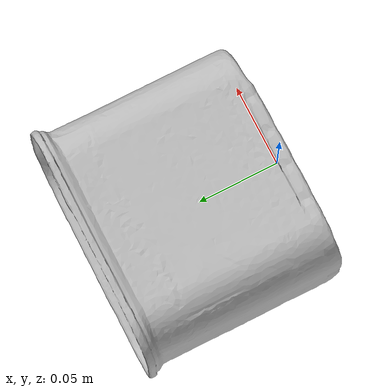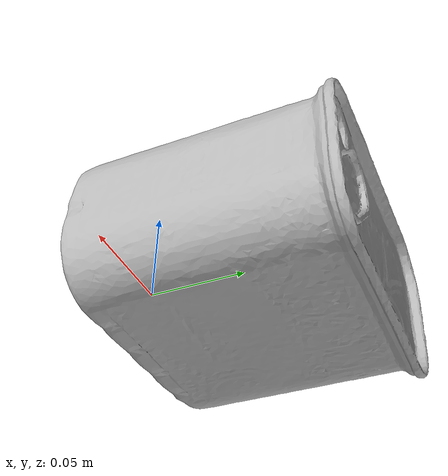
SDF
<?xml version='1.0'?>
<sdf version="1.4">
  <model name="potted_meat">
    <pose>0 0 0  0 0 0</pose>
    <static>0</static>
    <link name="body">
      <inertial>
          <mass>0.37</mass>
          <inertia>
            <ixx>0.000497</ixx>
            <ixy>0.000000</ixy>
            <ixz>0.000000</ixz>
            <iyy>0.000284</iyy>
            <iyz>0.000000</iyz>
            <izz>0.000367</izz>
          </inertia>
      </inertial>
      <collision name="collision">
        <geometry>
          <mesh>
			  <uri>model://potted_meat/meshes/potted.obj</uri>
			  <scale>0.15 0.15 0.15</scale>
          </mesh>
        </geometry>
        <surface>
            <friction>
              <ode>
                <mu>30.0</mu>
                <mu2>30.0</mu2>
              </ode>
            </friction>
            <contact>
              <ode>
                <kp>1000000.0</kp>
                <kd>100.0</kd>
                <max_vel>1.0</max_vel>
                <min_depth>0.002</min_depth>
              </ode>
            </contact>
        </surface>
      </collision>
      <visual name="visual">
        <geometry>
          <mesh>
			  <uri>model://potted_meat/meshes/potted.obj</uri>
			  <scale>0.15 0.15 0.15</scale>
          </mesh>
        </geometry>
      </visual>
      <velocity_decay>
        <linear>0.000000</linear>
        <angular>0.000000</angular>
      </velocity_decay>
      <self_collide>0</self_collide>
      <kinematic>0</kinematic>
      <gravity>1</gravity>
    </link>
  </model>
</sdf>
